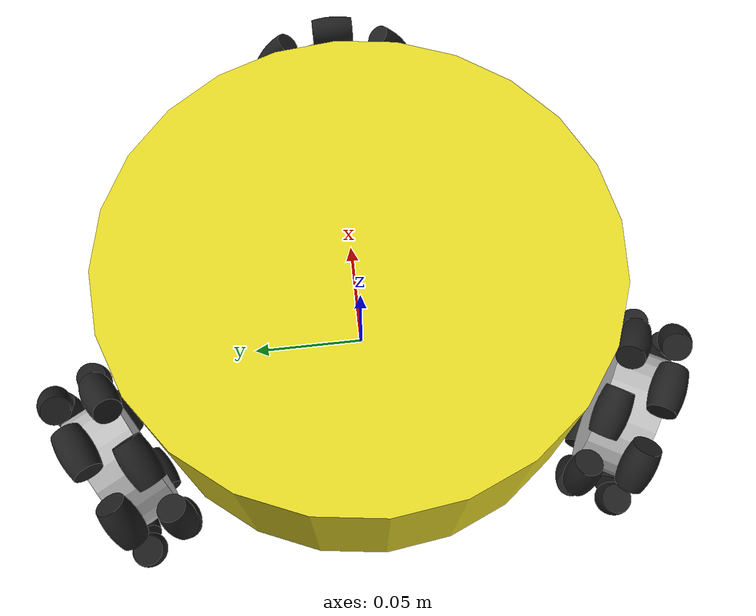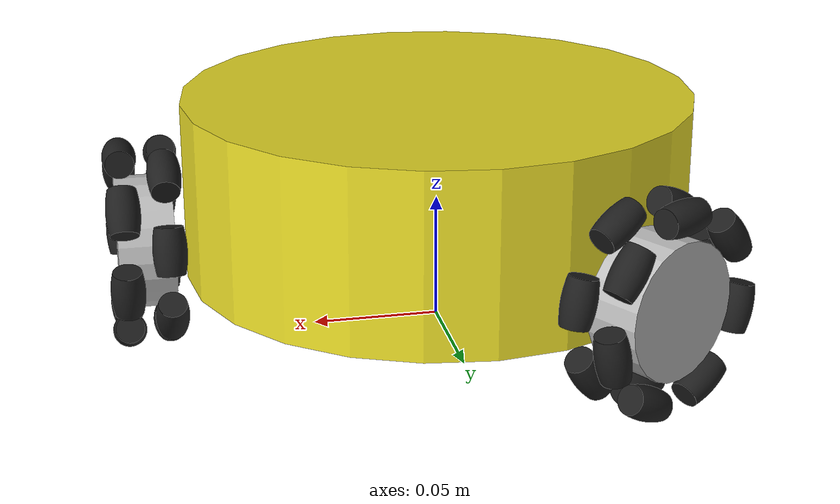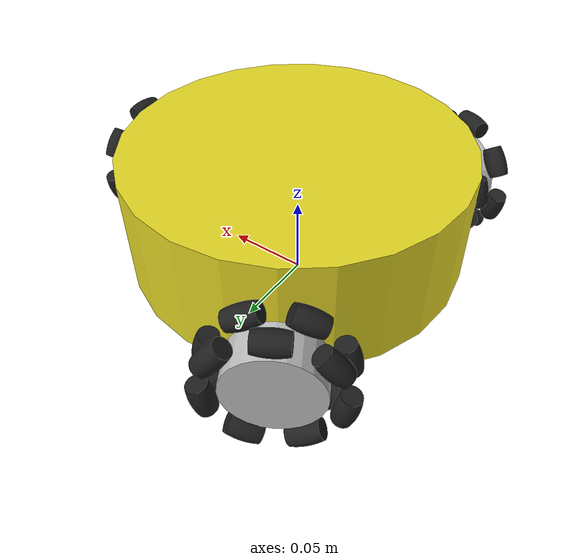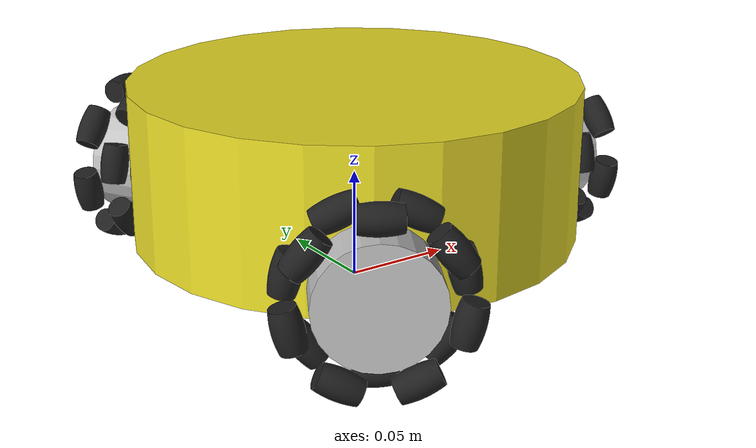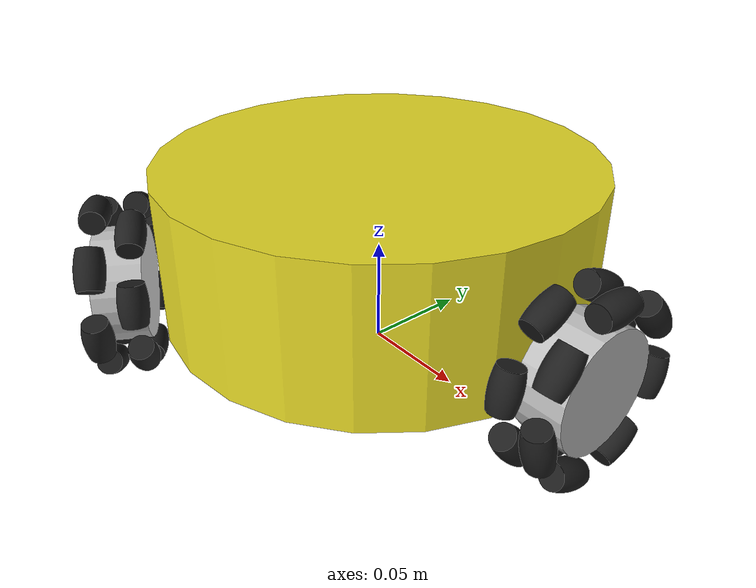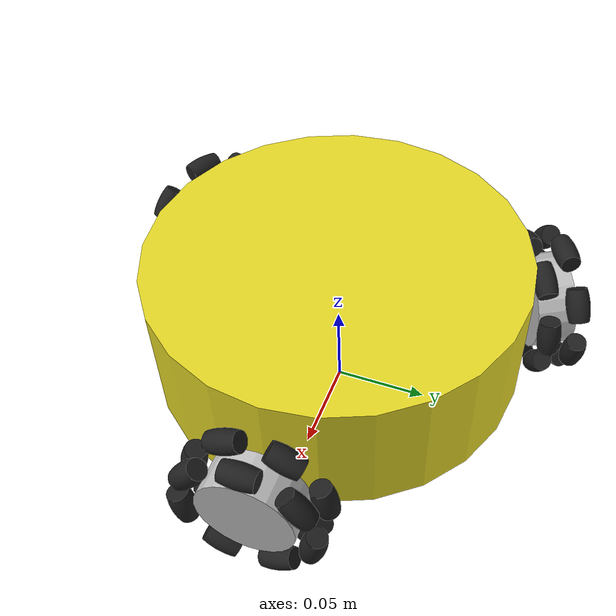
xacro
<?xml version="1.0"?>
<robot name="three_wheel_base" xmlns:xacro="http://www.ros.org/wiki/xacro">

    <material name="yellow">
        <color rgba="1 0.4 0 1"/>
    </material>
    <material name="black">
        <color rgba="0 0 0 0.95"/>
    </material>
    <material name="gray">
        <color rgba="0.75 0.75 0.75 1"/>
    </material>

    <xacro:macro name="cylinder_inertial_matrix" params="m r h">
        <inertial>
            <mass value="${m}" />
            <inertia ixx="${m*(3*r*r+h*h)/12}" ixy = "0" ixz = "0"
                iyy="${m*(3*r*r+h*h)/12}" iyz = "0"
                izz="${m*r*r/2}" />
        </inertial>
    </xacro:macro>

    <!-- PROPERTY LIST -->
    <xacro:property name="M_PI" value="3.1415926"/>

    <!-- base_link的质量、半径、高度 -->
    <xacro:property name="base_mass"   value="2" />
    <xacro:property name="base_radius"  value="0.1"/>
    <xacro:property name="base_height" value="0.07"/>
    <xacro:property name="bottom_to_floor" value="0.024"/>

    <!-- 整个轮子的半径 -->
    <xacro:property name="whole_wheel_radius" value="0.0405"/>

    <!-- 小轮参数 -->
    <xacro:property name="tiny_wheel_mass"   value="0.005" />
    <xacro:property name="tiny_wheel_radius"  value="${0.0128/2}"/>
    <xacro:property name="tiny_wheel_height"  value="0.018047"/>
    <xacro:property name="tiny_r_offset"  value="${whole_wheel_radius-tiny_wheel_radius}"/>
    <xacro:property name="tiny_axis_offset"  value="0.008"/>
    <xacro:property name="ang_step"  value="${2*M_PI/7}"/>

    <!-- 小轮与中间轮间距 -->
    <xacro:property name="space_tiny_center"   value="0.002" />

    <!-- 中心轮的质量、半径、高度 -->
    <xacro:property name="center_circle_mass"   value="0.3" />
    <xacro:property name="center_circle_radius"  value="${whole_wheel_radius-tiny_wheel_radius*2-space_tiny_center}"/>
    <xacro:property name="center_circle_height" value="0.0214"/>

    <!-- 三个轮子的偏移量，相对于base_link -->
    <xacro:property name="wheel_offset" value="${base_radius+center_circle_height/2+0.005}"/>
    <xacro:property name="wheel_z_offset" value="${-1*(bottom_to_floor+base_height/2-whole_wheel_radius)}"/>

    <link name="base_footprint">
        <visual>
            <origin xyz="0 0 0" rpy="0 0 0" />
            <geometry>
                <box size="0.001 0.001 0.001" />
            </geometry>
        </visual>
    </link>
    <gazebo reference="base_footprint">
        <turnGravityOff>false</turnGravityOff>
    </gazebo>

    <joint name="base_footprint_joint" type="fixed">
        <origin xyz="0 0 ${bottom_to_floor+base_height/2}" rpy="0 0 0" />
        <parent link="base_footprint"/>
        <child link="base_link" />
    </joint>
    <!-- 底盘 -->

    <link name="base_link">
        <visual>
            <origin xyz=" 0 0 0" rpy="0 0 0" />
            <geometry>

                <cylinder radius="${base_radius}" length = "${base_height}"/>
            </geometry>

        </visual>
        <collision>
            <origin xyz=" 0 0 0" rpy="0 0 0" />
            <geometry>
                <cylinder radius="${base_radius}" length = "${base_height}"/>
            </geometry>
        </collision>
        <xacro:cylinder_inertial_matrix  m="${base_mass}" r="${base_radius}" h="${base_height}" />
    </link>

    <gazebo reference="base_link">
        <material>Gazebo/Yellow</material>

    </gazebo>

    <!-- 小轮子的宏 -->
    <xacro:macro name="tiny_wheel" params="prefix1 prefix2 joint_offset_x joint_offset_y joint_offset_z joint_raw">
        <joint name="${prefix1}_tiny_joint_${prefix2}" type="continuous">
            <origin xyz="${joint_offset_x} ${joint_offset_y} ${joint_offset_z}" rpy="${joint_raw} 0 0" />
            <parent link="${prefix1}_link"/>
            <child link="${prefix1}_tiny_link_${prefix2}" />
            <axis xyz="0 1 0"/>
        </joint>
        <link name="${prefix1}_tiny_link_${prefix2}">
            <visual>
                <origin xyz=" 0 0 0" rpy="0 0 0" />
                <geometry>
                    <mesh filename="file://$(find myrobot_sim_gazebo)/meshes/mec_tiny_2.STL" scale="0.001 0.001 0.001"/>
                </geometry>
            </visual>
            <collision>
                <origin xyz=" 0 0 0" rpy="0 0 0" />
                <geometry>
                    <mesh filename="file://$(find myrobot_sim_gazebo)/meshes/mec_tiny_2.STL" scale="0.001 0.001 0.001"/>
                </geometry>
            </collision>
            <xacro:cylinder_inertial_matrix  m="${tiny_wheel_mass}" r="${tiny_wheel_radius-0.001}" h="${tiny_wheel_height}" />

        </link>

        <gazebo reference="${prefix1}_tiny_link_${prefix2}">
            <material>Gazebo/Black</material>
            <mu1>0.04</mu1>
            <mu2>0.04</mu2>
        </gazebo>
    </xacro:macro>

    <!-- 运动轮的宏 -->
    <xacro:macro name="wheel" params="prefix joint_offset_x joint_offset_y joint_offset_z joint_yaw link_raw link_pitch link_yaw axis_x axis_y axis_z">
        <joint name="${prefix}_joint" type="continuous">
            <origin xyz="${joint_offset_x} ${joint_offset_y} ${joint_offset_z}" rpy="0 0 ${joint_yaw}"/> <!-- 相对于 parent 坐标系，方向 parent -> child -->
            <parent link="base_link"/>
            <child link="${prefix}_link"/>
            <axis xyz="${axis_x} ${axis_y} ${axis_z}"/> <!-- 相对于轮子初始坐标系，向量方向由 parent -> child -->
            <dynamics damping="0.1" friction="0.0"/>
        </joint>

        <link name="${prefix}_link">
            <visual>
                <origin xyz="0 0 0" rpy="${link_raw} ${link_pitch} ${link_yaw}" />
                <geometry>
                    <cylinder radius="${center_circle_radius}" length = "${center_circle_height}"/>
                </geometry>
                <material name="gray" />
            </visual>
            <collision>
                <origin xyz="0 0 0" rpy="${link_raw} ${link_pitch} ${link_yaw}" /> <!-- 相对于轮子初始坐标系 -->
                <geometry>
                    <cylinder radius="${center_circle_radius}" length = "${center_circle_height}"/>
                </geometry>
            </collision>
            <xacro:cylinder_inertial_matrix  m="${center_circle_mass}" r="${center_circle_radius}" h="${center_circle_height}" />
        </link>

        <gazebo reference="${prefix}_link">
            <material>Gazebo/Gray</material>
            <mu1>1</mu1>
            <mu2>0.05</mu2>
        </gazebo>

        <!-- 第一组小轮子${M_PI/2} -->
        <xacro:tiny_wheel prefix1="${prefix}" prefix2="1" joint_offset_x="${tiny_axis_offset}" joint_offset_y="0" joint_offset_z="${tiny_r_offset}" joint_raw="0"/>
        <xacro:tiny_wheel prefix1="${prefix}" prefix2="2" joint_offset_x="${tiny_axis_offset}" joint_offset_y="${-1*tiny_r_offset*sin(ang_step)}" joint_offset_z="${tiny_r_offset*cos(ang_step)}" joint_raw="${ang_step}"/>
        <xacro:tiny_wheel prefix1="${prefix}" prefix2="3" joint_offset_x="${tiny_axis_offset}" joint_offset_y="${-1*tiny_r_offset*sin(ang_step*2)}" joint_offset_z="${tiny_r_offset*cos(ang_step*2)}" joint_raw="${ang_step*2}"/>
        <xacro:tiny_wheel prefix1="${prefix}" prefix2="4" joint_offset_x="${tiny_axis_offset}" joint_offset_y="${-1*tiny_r_offset*sin(ang_step*3)}" joint_offset_z="${tiny_r_offset*cos(ang_step*3)}" joint_raw="${ang_step*3}"/>
        <xacro:tiny_wheel prefix1="${prefix}" prefix2="5" joint_offset_x="${tiny_axis_offset}" joint_offset_y="${-1*tiny_r_offset*sin(ang_step*4)}" joint_offset_z="${tiny_r_offset*cos(ang_step*4)}" joint_raw="${ang_step*4}"/>
        <xacro:tiny_wheel prefix1="${prefix}" prefix2="6" joint_offset_x="${tiny_axis_offset}" joint_offset_y="${-1*tiny_r_offset*sin(ang_step*5)}" joint_offset_z="${tiny_r_offset*cos(ang_step*5)}" joint_raw="${ang_step*5}"/>
        <xacro:tiny_wheel prefix1="${prefix}" prefix2="7" joint_offset_x="${tiny_axis_offset}" joint_offset_y="${-1*tiny_r_offset*sin(ang_step*6)}" joint_offset_z="${tiny_r_offset*cos(ang_step*6)}" joint_raw="${ang_step*6}"/>

        <!-- 第二组 -->
        <xacro:tiny_wheel prefix1="${prefix}" prefix2="8" joint_offset_x="${-tiny_axis_offset}" joint_offset_y="${-1*tiny_r_offset*sin(ang_step/2)}" joint_offset_z="${tiny_r_offset*cos(ang_step/2)}" joint_raw="${ang_step/2}"/>
        <xacro:tiny_wheel prefix1="${prefix}" prefix2="9" joint_offset_x="${-tiny_axis_offset}" joint_offset_y="${-1*tiny_r_offset*sin(ang_step+ang_step/2)}" joint_offset_z="${tiny_r_offset*cos(ang_step+ang_step/2)}" joint_raw="${ang_step+ang_step/2}"/>
        <xacro:tiny_wheel prefix1="${prefix}" prefix2="10" joint_offset_x="${-tiny_axis_offset}" joint_offset_y="${-1*tiny_r_offset*sin(ang_step*2+ang_step/2)}" joint_offset_z="${tiny_r_offset*cos(ang_step*2+ang_step/2)}" joint_raw="${ang_step*2+ang_step/2}"/>
        <xacro:tiny_wheel prefix1="${prefix}" prefix2="11" joint_offset_x="${-tiny_axis_offset}" joint_offset_y="${-1*tiny_r_offset*sin(ang_step*3+ang_step/2)}" joint_offset_z="${tiny_r_offset*cos(ang_step*3+ang_step/2)}" joint_raw="${ang_step*3+ang_step/2}"/>
        <xacro:tiny_wheel prefix1="${prefix}" prefix2="12" joint_offset_x="${-tiny_axis_offset}" joint_offset_y="${-1*tiny_r_offset*sin(ang_step*4+ang_step/2)}" joint_offset_z="${tiny_r_offset*cos(ang_step*4+ang_step/2)}" joint_raw="${ang_step*4+ang_step/2}"/>
        <xacro:tiny_wheel prefix1="${prefix}" prefix2="13" joint_offset_x="${-tiny_axis_offset}" joint_offset_y="${-1*tiny_r_offset*sin(ang_step*5+ang_step/2)}" joint_offset_z="${tiny_r_offset*cos(ang_step*5+ang_step/2)}" joint_raw="${ang_step*5+ang_step/2}"/>
        <xacro:tiny_wheel prefix1="${prefix}" prefix2="14" joint_offset_x="${-tiny_axis_offset}" joint_offset_y="${-1*tiny_r_offset*sin(ang_step*6+ang_step/2)}" joint_offset_z="${tiny_r_offset*cos(ang_step*6+ang_step/2)}" joint_raw="${ang_step*6+ang_step/2}"/>

        <transmission name="${prefix}_transmission">
            <type>transmission_interface/SimpleTransmission</type>
            <joint name="${prefix}_joint">
                <hardwareInterface>hardware_interface/VelocityJointInterface</hardwareInterface>
            </joint>
            <actuator name="${prefix}_motor">
                <hardwareInterface>hardware_interface/VelocityJointInterface</hardwareInterface>
                <mechanicalReduction>1</mechanicalReduction>
            </actuator>
        </transmission>

    </xacro:macro>

    <!-- wheel1：前方轮，旋转轴沿 Y -->
    <xacro:wheel prefix="wheel1"
        joint_offset_x="${wheel_offset}"
        joint_offset_y="0"
        joint_offset_z="${wheel_z_offset}"
        joint_yaw="0"
        link_raw="0"
        link_pitch="${M_PI/2}"
        link_yaw="0"
        axis_x="1" axis_y="0" axis_z="0" />

    <!-- wheel2：左后轮（120°） -->
    <xacro:wheel prefix="wheel2"
        joint_offset_x="${-wheel_offset/2}"
        joint_offset_y="${wheel_offset*sqrt(3)/2}"
        joint_offset_z="${wheel_z_offset}"
        joint_yaw="${2*M_PI/3}"
        link_raw="0"
        link_pitch="${M_PI/2}"
        link_yaw="0"
        axis_x="1" axis_y="0" axis_z="0" />

    <!-- wheel3：右后轮（-120°） -->
    <xacro:wheel prefix="wheel3"
        joint_offset_x="${-wheel_offset/2}"
        joint_offset_y="${-wheel_offset*sqrt(3)/2}"
        joint_offset_z="${wheel_z_offset}"
        joint_yaw="${4*M_PI/3}"
        link_raw="0"
        link_pitch="${M_PI/2}"
        link_yaw="0"
        axis_x="1" axis_y="0" axis_z="0" />

    <!-- Gazebo 插件 -->

    <ros2_control name="three_wheel_hw" type="system">
        <hardware>
            <plugin>gazebo_ros2_control/GazeboSystem</plugin>
        </hardware>

        <joint name="wheel1_joint">
            <command_interface name="velocity">
                <param name="min">-24.5</param>
                <param name="max">24.5</param>
            </command_interface>
            <state_interface name="position">
                <param name="initial_value">0.0</param>
            </state_interface>
            <state_interface name="velocity">
                <param name="initial_value">0.0</param>
            </state_interface>
        </joint>

        <joint name="wheel2_joint">
            <command_interface name="velocity">
                <param name="min">-24.5</param>
                <param name="max">24.5</param>
            </command_interface>
            <state_interface name="position">
                <param name="initial_value">0.0</param>
            </state_interface>
            <state_interface name="velocity">
                <param name="initial_value">0.0</param>
            </state_interface>
        </joint>

        <joint name="wheel3_joint">
            <command_interface name="velocity">
                <param name="min">-24.5</param>
                <param name="max">24.5</param>
            </command_interface>
            <state_interface name="position">
                <param name="initial_value">0.0</param>
            </state_interface>
            <state_interface name="velocity">
                <param name="initial_value">0.0</param>
            </state_interface>
        </joint>

    </ros2_control>

    <gazebo>
        <plugin name="gazebo_ros2_control" filename="libgazebo_ros2_control.so">
            <parameters>$(find myrobot_sim_gazebo)/config/my_robot_controllers.yaml</parameters>
        </plugin>

        <plugin name="joint_state_publisher" filename="libgazebo_ros_joint_state_publisher.so">
            <updateRate>50</updateRate>
        </plugin>
    </gazebo>

</robot>
